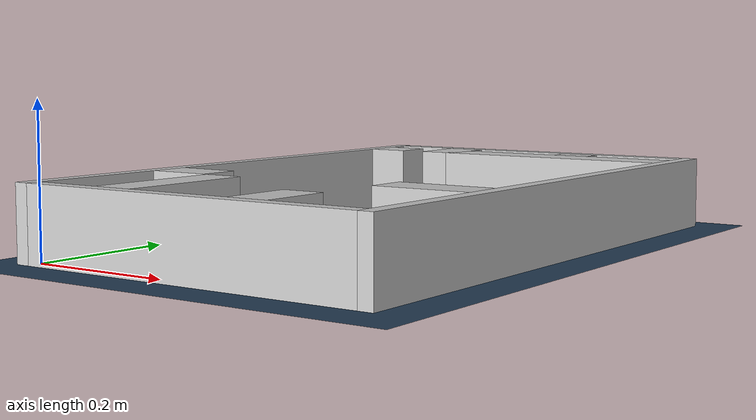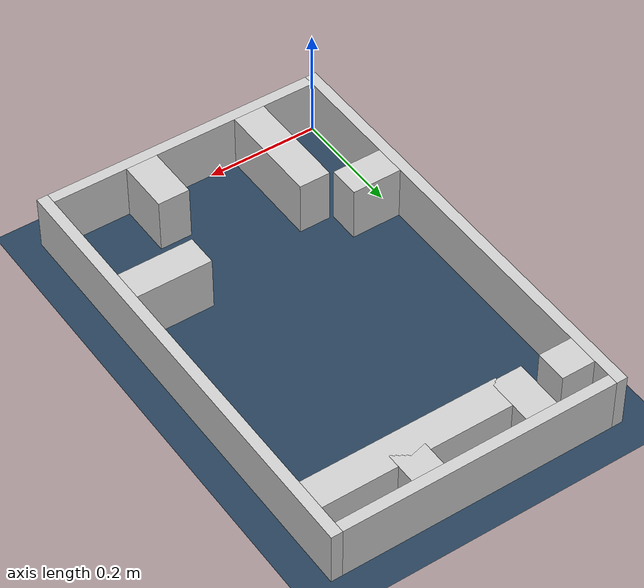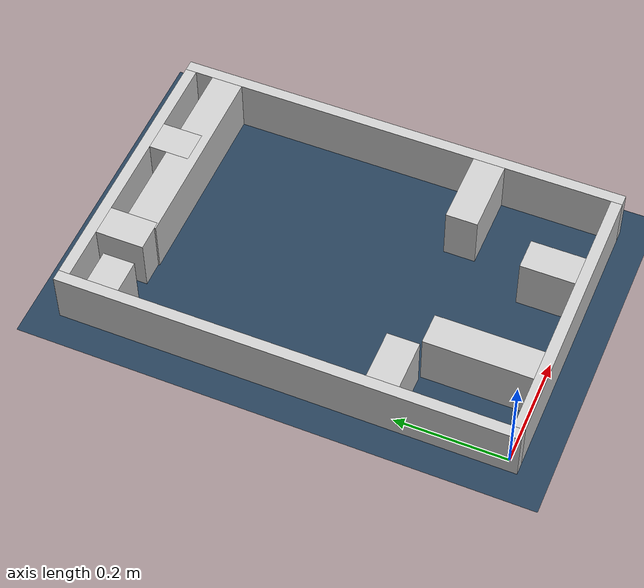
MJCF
<?xml version="1.0" ?>
<mujoco model="generated_real_template">
  <compiler angle="degree"/>
  <option timestep="0.002" integrator="implicitfast" iterations="100" cone="elliptic"/>
  <default>
    <geom density="1"/>
  </default>
  <asset>
    <texture builtin="gradient" height="3072" rgb1="0.3 0.5 0.7" rgb2="0 0 0" type="skybox" width="512"/>
    <texture builtin="checker" height="300" mark="edge" markrgb="0.8 0.8 0.8" name="groundplane" rgb1="0.2 0.3 0.4" rgb2="0.1 0.2 0.3" type="2d" width="300"/>
    <material name="groundplane" reflectance="0.2" texrepeat="5 5" texture="groundplane" texuniform="true"/>
  </asset>
  <worldbody>
    <light dir="0 0 -1" directional="true" pos="0 0 1.5"/>
    <geom name="floor" type="plane" condim="4" friction="0.5 0.005 0.001" material="groundplane" size="0 0 0.05"/>
    <body name="walls">
      <geom name="wall_boundary_left" type="box" condim="4" friction="1.0 0.005 0.0001" rgba="0.8 0.8 0.8 1" pos="-0.010000 0.387500 0.050000" euler="0 0 0.000000" size="0.010000 0.407500 0.050000"/>
      <geom name="wall_boundary_right" type="box" condim="4" friction="1.0 0.005 0.0001" rgba="0.8 0.8 0.8 1" pos="0.500000 0.387500 0.050000" euler="0 0 0.000000" size="0.010000 0.407500 0.050000"/>
      <geom name="wall_boundary_bottom" type="box" condim="4" friction="1.0 0.005 0.0001" rgba="0.8 0.8 0.8 1" pos="0.245000 -0.010000 0.050000" euler="0 0 0.000000" size="0.245000 0.010000 0.050000"/>
      <geom name="wall_boundary_top" type="box" condim="4" friction="1.0 0.005 0.0001" rgba="0.8 0.8 0.8 1" pos="0.245000 0.785000 0.050000" euler="0 0 0.000000" size="0.245000 0.010000 0.050000"/>
      <geom name="wall_inner_1_1" type="box" condim="4" friction="1.0 0.005 0.0001" rgba="0.8 0.8 0.8 1" pos="0.044758 0.219491 0.050000" euler="0 0 0.000000" size="0.044758 0.028500 0.050000"/>
      <geom name="wall_inner_1_2" type="box" condim="4" friction="1.0 0.005 0.0001" rgba="0.8 0.8 0.8 1" pos="0.422553 0.219491 0.050000" euler="0 0 0.000000" size="0.067447 0.028500 0.050000"/>
      <geom name="wall_inner_2_1" type="box" condim="4" friction="1.0 0.005 0.0001" rgba="0.8 0.8 0.8 1" pos="0.328882 0.048268 0.050000" euler="0 0 90.000000" size="0.048268 0.028500 0.050000"/>
      <geom name="wall_inner_2_2" type="box" condim="4" friction="1.0 0.005 0.0001" rgba="0.8 0.8 0.8 1" pos="0.328882 0.738414 0.050000" euler="0 0 90.000000" size="0.036586 0.028500 0.050000"/>
      <geom name="wall_inner_3_1" type="box" condim="4" friction="1.0 0.005 0.0001" rgba="0.8 0.8 0.8 1" pos="0.124118 0.094911 0.050000" euler="0 0 90.000000" size="0.094911 0.028500 0.050000"/>
      <geom name="wall_inner_3_2" type="box" condim="4" friction="1.0 0.005 0.0001" rgba="0.8 0.8 0.8 1" pos="0.124118 0.731718 0.050000" euler="0 0 90.000000" size="0.043282 0.028500 0.050000"/>
      <geom name="wall_inner_4_1" type="box" condim="4" friction="1.0 0.005 0.0001" rgba="0.8 0.8 0.8 1" pos="0.030119 0.714400 0.050000" euler="0 0 0.000000" size="0.030119 0.028500 0.050000"/>
      <geom name="wall_inner_4_2" type="box" condim="4" friction="1.0 0.005 0.0001" rgba="0.8 0.8 0.8 1" pos="0.315272 0.714400 0.050000" euler="0 0 0.000000" size="0.174728 0.028500 0.050000"/>
    </body>
  </worldbody>
</mujoco>
